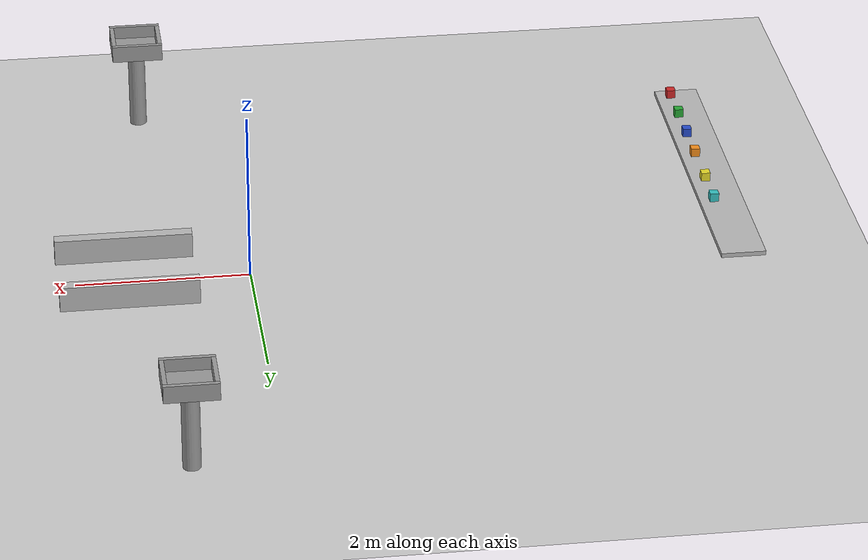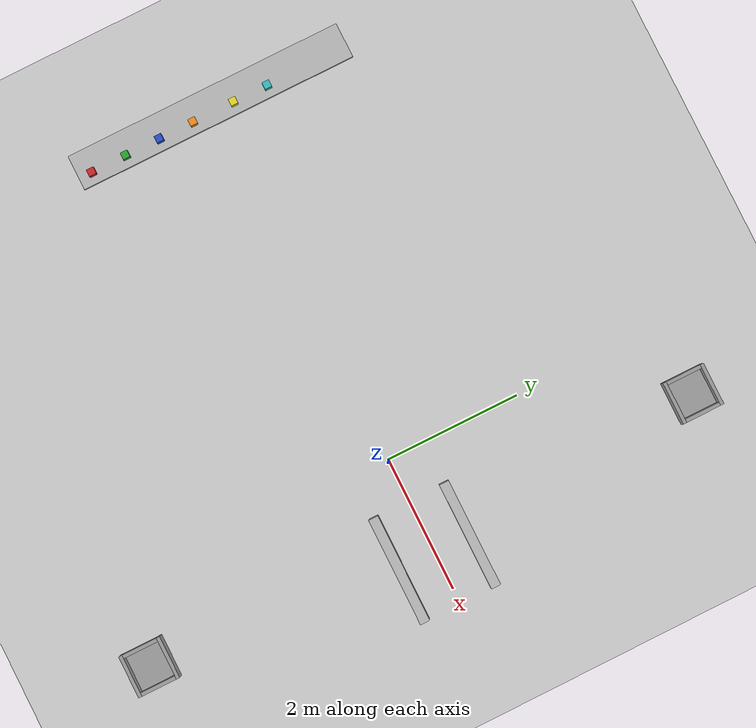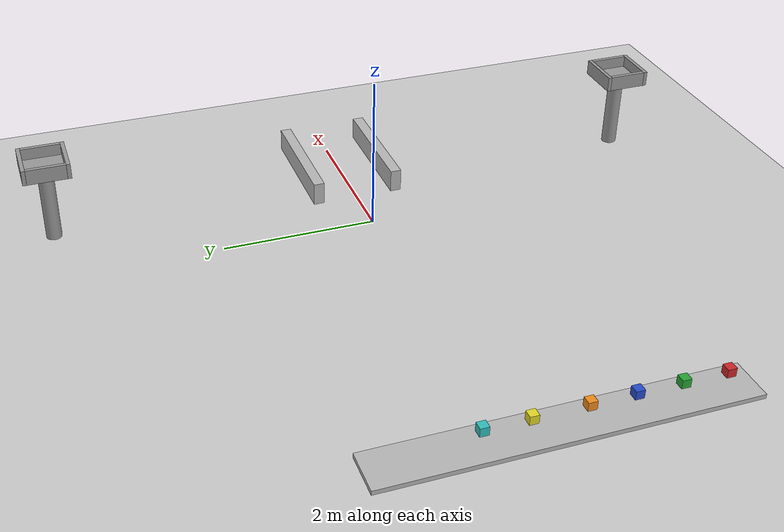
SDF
<sdf version="1.4">
 <world name="default">
  <scene><sky><clouds><speed>12</speed></clouds></sky></scene>
  <physics type="ode">
   <gravity>0 0 -9.81</gravity>
   <ode>
    <solver><type>quick</type><iters>50</iters><sor>1.4</sor></solver>
    <constraints>
     <cfm>0.0</cfm>
     <erp>0.2</erp>
     <contact_max_correcting_vel>100.0</contact_max_correcting_vel>
     <contact_surface_layer>0.0</contact_surface_layer>
    </constraints>
   </ode>
   <real_time_update_rate>1000</real_time_update_rate>
   <max_step_size>0.001</max_step_size>
  </physics>
  <light type="directional" name="sun">
   <pose>0 0 10 0 0 0</pose>
   <diffuse>0.8 0.8 0.8 1</diffuse>
   <specular>0.2 0.2 0.2 1</specular>
   <attenuation>
    <range>1000</range>
    <constant>0.9</constant>
    <linear>0.01</linear>
    <quadratic>0.001</quadratic>
   </attenuation>
   <direction>0.8 0.2 -0.7</direction>
  </light>
  <include><uri>model://ground_plane</uri></include>
  <model name="shelf">
   <static>true</static>
   <pose>-5.3 0 1.0 0 0 0</pose>
   <link name="link">
    <collision name="collision"><geometry><box><size>0.5 4 0.05</size></box></geometry></collision>
    <visual name="visual"><geometry><box><size>0.5 4 0.05</size></box></geometry></visual>
   </link>
  </model>
  <model name="box1">
   <pose>-5.2 -1.8  1.1 0 0 0</pose>
   <link name="link">
    <inertial>
     <mass>0.1</mass>
     <inertia>
      <ixx>0.000166667</ixx>
      <ixy>0</ixy>
      <ixz>0</ixz>
      <iyy>0.000166667</iyy>
      <iyz>0</iyz>
      <izz>0.000166667</izz>
     </inertia>
    </inertial>
    <collision name="collision">
     <geometry><box><size>0.1 .1 0.1</size></box></geometry>
     <surface><friction><ode><mu>0.9</mu><mu2>0.9</mu2></ode></friction></surface>
    </collision>
    <visual name="visual">
     <geometry><box><size>0.1 .1 0.1</size></box></geometry>
     <material><script><name>Gazebo/Red</name></script></material>
    </visual>
   </link>
  </model>
  <model name="box2">
   <pose>-5.2 -1.3  1.1 0 0 0</pose>
   <link name="link">
    <inertial>
     <mass>0.1</mass>
     <inertia>
      <ixx>0.000166667</ixx>
      <ixy>0</ixy>
      <ixz>0</ixz>
      <iyy>0.000166667</iyy>
      <iyz>0</iyz>
      <izz>0.000166667</izz>
     </inertia>
    </inertial>
    <collision name="collision">
     <geometry><box><size>0.1 .1 0.1</size></box></geometry>
     <surface><friction><ode><mu>0.9</mu><mu2>0.9</mu2></ode></friction></surface>
    </collision>
    <visual name="visual">
     <geometry><box><size>0.1 .1 0.1</size></box></geometry>
     <material><script><name>Gazebo/Green</name></script></material>
    </visual>
   </link>
  </model>
  <model name="box3">
   <pose>-5.2 -0.8  1.1 0 0 0</pose>
   <link name="link">
    <inertial>
     <mass>0.1</mass>
     <inertia>
      <ixx>0.000166667</ixx>
      <ixy>0</ixy>
      <ixz>0</ixz>
      <iyy>0.000166667</iyy>
      <iyz>0</iyz>
      <izz>0.000166667</izz>
     </inertia>
    </inertial>
    <collision name="collision">
     <geometry><box><size>0.1 .1 0.1</size></box></geometry>
     <surface><friction><ode><mu>0.9</mu><mu2>0.9</mu2></ode></friction></surface>
    </collision>
    <visual name="visual">
     <geometry><box><size>0.1 .1 0.1</size></box></geometry>
     <material><script><name>Gazebo/Blue</name></script></material>
    </visual>
   </link>
  </model>
  <model name="box4">
   <pose>-5.2 -0.3  1.1 0 0 0</pose>
   <link name="link">
    <inertial>
     <mass>0.1</mass>
     <inertia>
      <ixx>0.000166667</ixx>
      <ixy>0</ixy>
      <ixz>0</ixz>
      <iyy>0.000166667</iyy>
      <iyz>0</iyz>
      <izz>0.000166667</izz>
     </inertia>
    </inertial>
    <collision name="collision">
     <geometry><box><size>0.1 .1 0.1</size></box></geometry>
     <surface><friction><ode><mu>0.9</mu><mu2>0.9</mu2></ode></friction></surface>
    </collision>
    <visual name="visual">
     <geometry><box><size>0.1 .1 0.1</size></box></geometry>
     <material><script><name>Gazebo/Orange</name></script></material>
    </visual>
   </link>
  </model>
  <model name="box5">
   <pose>-5.2 0.3  1.1 0 0 0</pose>
   <link name="link">
    <inertial>
     <mass>0.1</mass>
     <inertia>
      <ixx>0.000166667</ixx>
      <ixy>0</ixy>
      <ixz>0</ixz>
      <iyy>0.000166667</iyy>
      <iyz>0</iyz>
      <izz>0.000166667</izz>
     </inertia>
    </inertial>
    <collision name="collision">
     <geometry><box><size>0.1 .1 0.1</size></box></geometry>
     <surface><friction><ode><mu>0.9</mu><mu2>0.9</mu2></ode></friction></surface>
    </collision>
    <visual name="visual">
     <geometry><box><size>0.1 .1 0.1</size></box></geometry>
     <material><script><name>Gazebo/Yellow</name></script></material>
    </visual>
   </link>
  </model>
  <model name="box6">
   <pose>-5.2 0.8  1.1 0 0 0</pose>
   <link name="link">
    <inertial>
     <mass>0.1</mass>
     <inertia>
      <ixx>0.000166667</ixx>
      <ixy>0</ixy>
      <ixz>0</ixz>
      <iyy>0.000166667</iyy>
      <iyz>0</iyz>
      <izz>0.000166667</izz>
     </inertia>
    </inertial>
    <collision name="collision">
     <geometry><box><size>0.1 .1 0.1</size></box></geometry>
     <surface><friction><ode><mu>0.9</mu><mu2>0.9</mu2></ode></friction></surface>
    </collision>
    <visual name="visual">
     <geometry><box><size>0.1 .1 0.1</size></box></geometry>
     <material><script><name>Gazebo/Turquoise</name></script></material>
    </visual>
   </link>
  </model>
  <model name="sidewall_extension">
   <static>true</static>
   <pose>1.413350 0.542197 0.175772 0 0 0</pose>
   <link name="link">
    <visual name="visual"><geometry><box><size>1.5875 0.14288 0.3</size></box></geometry></visual>
   </link>
  </model>
  <model name="sidewall_extension2">
   <static>true</static>
   <pose>1.413350 -0.542197 0.175772 0 0 0</pose>
   <link name="link">
    <visual name="visual"><geometry><box><size>1.5875 0.14288 0.3</size></box></geometry></visual>
   </link>
  </model>
  <plugin filename="libHydraPlugin.so" name="hydra_plugin"/>
  <include><uri>model://bin</uri><pose>1 4 1 0 0 0</pose></include>
  <include><uri>model://bin</uri><pose>1 -4 1 0 0 0</pose></include>
  <model name="dolly">
   <static>false</static>
   <pose>0 0 4 0 0 0</pose>
   <link name="link">
    <gravity>false</gravity>
    <collision name="collision"><geometry><box><size>1 1 0.1</size></box></geometry></collision>
   </link>
   <joint name="world_joint" type="revolute">
    <parent>world</parent>
    <child>link</child>
    <axis><xyz>0 0 1</xyz><limit><upper>0</upper><lower>0</lower></limit></axis>
   </joint>
  </model>
 </world>
</sdf>

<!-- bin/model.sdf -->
<sdf version="1.4">
<model name="bin">
  <static>true</static>
  <pose>0.72 0.72 1.00 0 0 0</pose>
  <link name="link">
    <collision name="pedistal_collision">
      <pose>0 0 -0.5 0 0 0</pose>
      <geometry>
        <cylinder>
          <radius>0.1</radius>
          <length>1.0</length>
        </cylinder>
      </geometry>
    </collision>
    <visual name="pedistal_visual">
      <pose>0 0 -0.5 0 0 0</pose>
      <geometry>
        <cylinder>
          <radius>0.1</radius>
          <length>1.0</length>
        </cylinder>
      </geometry>
      <material>
        <script>
          <uri>file://media/materials/scripts/gazebo.material</uri>
          <name>Gazebo/Grey</name>
        </script>
      </material>
    </visual>
    <collision name="bottom_collision">
      <geometry>
        <box>
          <size>0.5 0.5 0.05</size>
        </box>
      </geometry>
    </collision>
    <visual name="bottom_visual">
      <geometry>
        <box>
          <size>0.5 0.5 0.05</size>
        </box>
      </geometry>
      <material>
        <script>
          <uri>file://media/materials/scripts/gazebo.material</uri>
          <name>Gazebo/Grey</name>
        </script>
      </material>
    </visual>
    <collision name="side1_collision">
      <pose>0 0.275 0.075 0 0 0</pose>
      <geometry>
        <box>
          <size>0.6 0.05 0.2</size>
        </box>
      </geometry>
    </collision>
    <visual name="side1_visual">
      <pose>0 0.275 0.075 0 0 0</pose>
      <geometry>
        <box>
          <size>0.6 0.05 0.2</size>
        </box>
      </geometry>
      <material>
        <script>
          <uri>file://media/materials/scripts/gazebo.material</uri>
          <name>Gazebo/Grey</name>
        </script>
      </material>
    </visual>
    <collision name="side2_collision">
      <pose>0 -0.275 0.075 0 0 0</pose>
      <geometry>
        <box>
          <size>0.6 0.05 0.2</size>
        </box>
      </geometry>
    </collision>
    <visual name="side2_visual">
      <pose>0 -0.275 0.075 0 0 0</pose>
      <geometry>
        <box>
          <size>0.6 0.05 0.2</size>
        </box>
      </geometry>
      <material>
        <script>
          <uri>file://media/materials/scripts/gazebo.material</uri>
          <name>Gazebo/Grey</name>
        </script>
      </material>
    </visual>
    <collision name="side3_collision">
      <pose>0.275 0 0.075 0 0 0</pose>
      <geometry>
        <box>
          <size>0.05 0.5 0.2</size>
        </box>
      </geometry>
    </collision>
    <visual name="side3_visual">
      <pose>0.275 0 0.075 0 0 0</pose>
      <geometry>
        <box>
          <size>0.05 0.5 0.2</size>
        </box>
      </geometry>
      <material>
        <script>
          <uri>file://media/materials/scripts/gazebo.material</uri>
          <name>Gazebo/Grey</name>
        </script>
      </material>
    </visual>
    <collision name="side4_collision">
      <pose>-0.275 0 0.075 0 0 0</pose>
      <geometry>
        <box>
          <size>0.05 0.5 0.2</size>
        </box>
      </geometry>
    </collision>
    <visual name="side4_visual">
      <pose>-0.275 0 0.075 0 0 0</pose>
      <geometry>
        <box>
          <size>0.05 0.5 0.2</size>
        </box>
      </geometry>
      <material>
        <script>
          <uri>file://media/materials/scripts/gazebo.material</uri>
          <name>Gazebo/Grey</name>
        </script>
      </material>
    </visual>
  </link>
</model>
</sdf>
